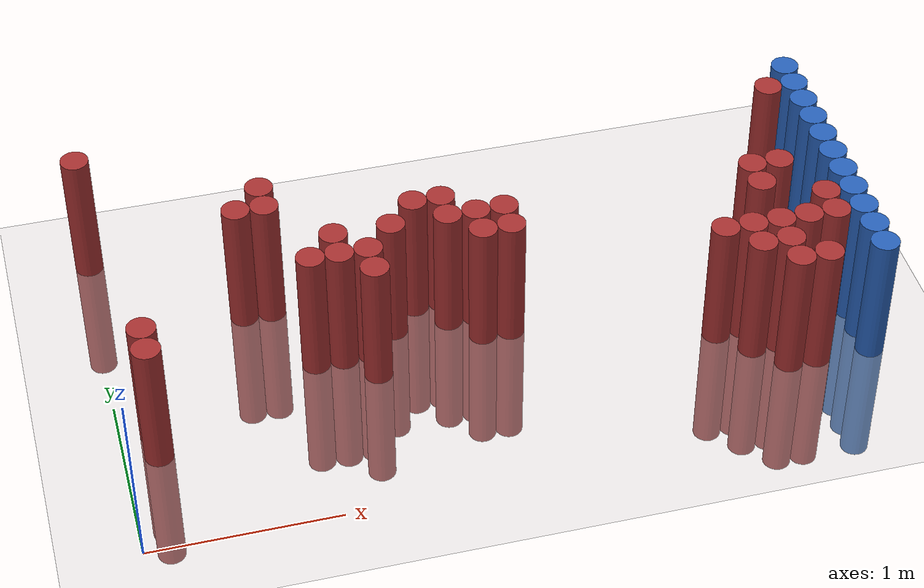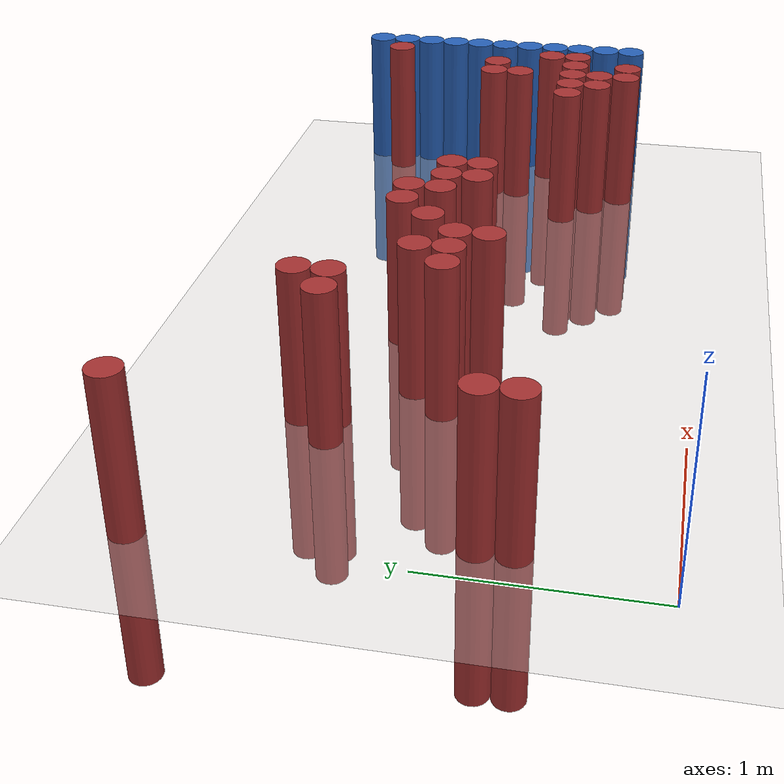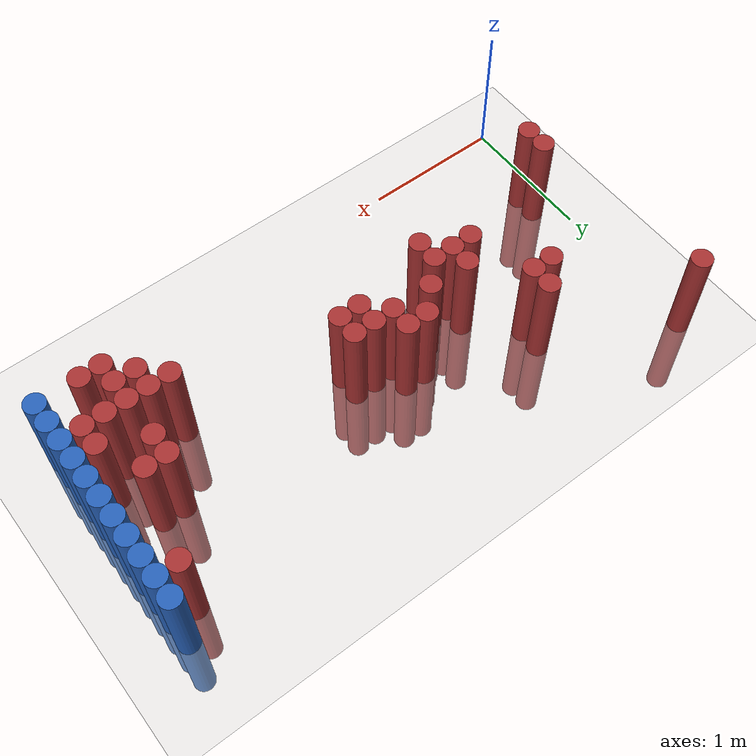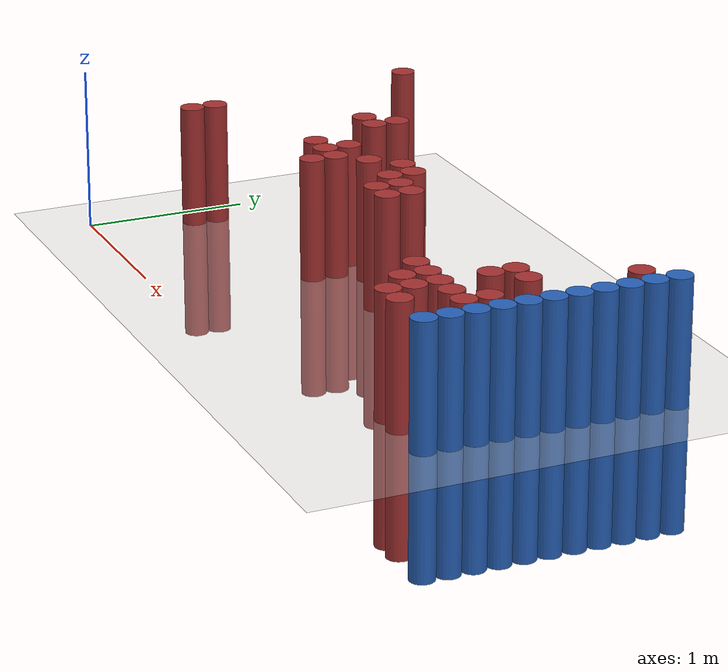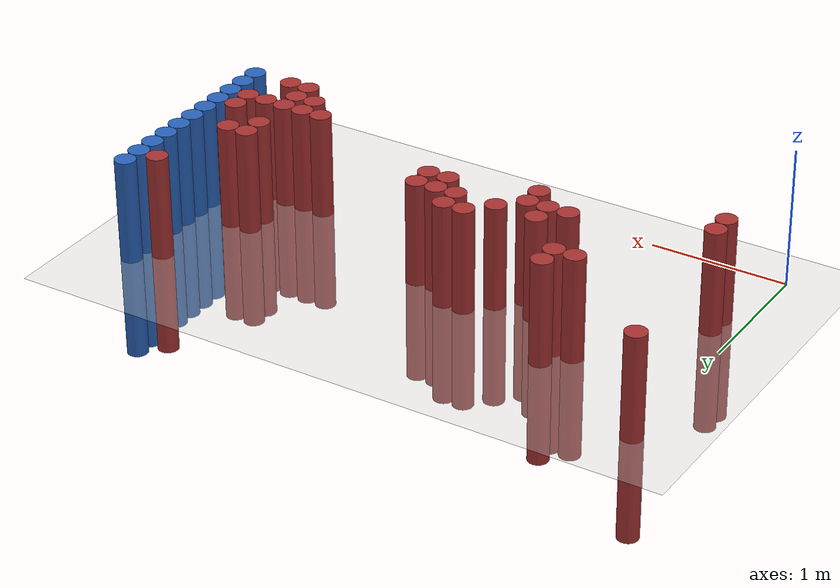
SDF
<sdf version="1.6">
 <world name="default">
  <model name="ground_plane">
   <static>1</static>
   <link name="link">
    <collision name="collision">
     <geometry><plane><normal>0 0 1</normal><size>100 100</size></plane></geometry>
     <surface><friction><ode><mu>100</mu><mu2>50</mu2></ode></friction></surface>
    </collision>
    <visual name="visual">
     <cast_shadows>0</cast_shadows>
     <geometry><plane><normal>0 0 1</normal><size>100 100</size></plane></geometry>
     <material>
      <script><uri>file://media/materials/scripts/gazebo.material</uri><name>Gazebo/Grey</name></script>
     </material>
    </visual>
   </link>
  </model>
  <model name="unit_cylinder_122">
   <static>1</static>
   <pose>3.925000 0.625000 0.000000 0.000000 0.000000 0.000000</pose>
   <link name="link">
    <inertial>
     <mass>1</mass>
     <inertia><ixx>0.145833</ixx><ixy>0</ixy><ixz>0</ixz><iyy>0.145833</iyy><iyz>0</iyz><izz>0.125</izz></inertia>
    </inertial>
    <collision name="collision">
     <geometry><cylinder><radius>0.075000</radius><length>1.5</length></cylinder></geometry>
    </collision>
    <visual name="visual">
     <geometry><cylinder><radius>0.075000</radius><length>1.5</length></cylinder></geometry>
     <material>
      <ambient>0.152000 0.379000 0.720000 1</ambient>
      <diffuse>0.152000 0.379000 0.720000 1</diffuse>
     </material>
     <material>
      <script><name>Gazebo/Grey</name><uri>file://media/materials/scripts/gazebo.material</uri></script>
     </material>
    </visual>
   </link>
  </model>
  <model name="unit_cylinder_124">
   <static>1</static>
   <pose>3.925000 0.775000 0.000000 0.000000 0.000000 0.000000</pose>
   <link name="link">
    <inertial>
     <mass>1</mass>
     <inertia><ixx>0.145833</ixx><ixy>0</ixy><ixz>0</ixz><iyy>0.145833</iyy><iyz>0</iyz><izz>0.125</izz></inertia>
    </inertial>
    <collision name="collision">
     <geometry><cylinder><radius>0.075000</radius><length>1.5</length></cylinder></geometry>
    </collision>
    <visual name="visual">
     <geometry><cylinder><radius>0.075000</radius><length>1.5</length></cylinder></geometry>
     <material>
      <ambient>0.152000 0.379000 0.720000 1</ambient>
      <diffuse>0.152000 0.379000 0.720000 1</diffuse>
     </material>
     <material>
      <script><name>Gazebo/Grey</name><uri>file://media/materials/scripts/gazebo.material</uri></script>
     </material>
    </visual>
   </link>
  </model>
  <model name="unit_cylinder_126">
   <static>1</static>
   <pose>3.925000 0.925000 0.000000 0.000000 0.000000 0.000000</pose>
   <link name="link">
    <inertial>
     <mass>1</mass>
     <inertia><ixx>0.145833</ixx><ixy>0</ixy><ixz>0</ixz><iyy>0.145833</iyy><iyz>0</iyz><izz>0.125</izz></inertia>
    </inertial>
    <collision name="collision">
     <geometry><cylinder><radius>0.075000</radius><length>1.5</length></cylinder></geometry>
    </collision>
    <visual name="visual">
     <geometry><cylinder><radius>0.075000</radius><length>1.5</length></cylinder></geometry>
     <material>
      <ambient>0.152000 0.379000 0.720000 1</ambient>
      <diffuse>0.152000 0.379000 0.720000 1</diffuse>
     </material>
     <material>
      <script><name>Gazebo/Grey</name><uri>file://media/materials/scripts/gazebo.material</uri></script>
     </material>
    </visual>
   </link>
  </model>
  <model name="unit_cylinder_128">
   <static>1</static>
   <pose>3.925000 1.075000 0.000000 0.000000 0.000000 0.000000</pose>
   <link name="link">
    <inertial>
     <mass>1</mass>
     <inertia><ixx>0.145833</ixx><ixy>0</ixy><ixz>0</ixz><iyy>0.145833</iyy><iyz>0</iyz><izz>0.125</izz></inertia>
    </inertial>
    <collision name="collision">
     <geometry><cylinder><radius>0.075000</radius><length>1.5</length></cylinder></geometry>
    </collision>
    <visual name="visual">
     <geometry><cylinder><radius>0.075000</radius><length>1.5</length></cylinder></geometry>
     <material>
      <ambient>0.152000 0.379000 0.720000 1</ambient>
      <diffuse>0.152000 0.379000 0.720000 1</diffuse>
     </material>
     <material>
      <script><name>Gazebo/Grey</name><uri>file://media/materials/scripts/gazebo.material</uri></script>
     </material>
    </visual>
   </link>
  </model>
  <model name="unit_cylinder_130">
   <static>1</static>
   <pose>3.925000 1.225000 0.000000 0.000000 0.000000 0.000000</pose>
   <link name="link">
    <inertial>
     <mass>1</mass>
     <inertia><ixx>0.145833</ixx><ixy>0</ixy><ixz>0</ixz><iyy>0.145833</iyy><iyz>0</iyz><izz>0.125</izz></inertia>
    </inertial>
    <collision name="collision">
     <geometry><cylinder><radius>0.075000</radius><length>1.5</length></cylinder></geometry>
    </collision>
    <visual name="visual">
     <geometry><cylinder><radius>0.075000</radius><length>1.5</length></cylinder></geometry>
     <material>
      <ambient>0.152000 0.379000 0.720000 1</ambient>
      <diffuse>0.152000 0.379000 0.720000 1</diffuse>
     </material>
     <material>
      <script><name>Gazebo/Grey</name><uri>file://media/materials/scripts/gazebo.material</uri></script>
     </material>
    </visual>
   </link>
  </model>
  <model name="unit_cylinder_132">
   <static>1</static>
   <pose>3.925000 1.375000 0.000000 0.000000 0.000000 0.000000</pose>
   <link name="link">
    <inertial>
     <mass>1</mass>
     <inertia><ixx>0.145833</ixx><ixy>0</ixy><ixz>0</ixz><iyy>0.145833</iyy><iyz>0</iyz><izz>0.125</izz></inertia>
    </inertial>
    <collision name="collision">
     <geometry><cylinder><radius>0.075000</radius><length>1.5</length></cylinder></geometry>
    </collision>
    <visual name="visual">
     <geometry><cylinder><radius>0.075000</radius><length>1.5</length></cylinder></geometry>
     <material>
      <ambient>0.152000 0.379000 0.720000 1</ambient>
      <diffuse>0.152000 0.379000 0.720000 1</diffuse>
     </material>
     <material>
      <script><name>Gazebo/Grey</name><uri>file://media/materials/scripts/gazebo.material</uri></script>
     </material>
    </visual>
   </link>
  </model>
  <model name="unit_cylinder_134">
   <static>1</static>
   <pose>3.925000 1.525000 0.000000 0.000000 0.000000 0.000000</pose>
   <link name="link">
    <inertial>
     <mass>1</mass>
     <inertia><ixx>0.145833</ixx><ixy>0</ixy><ixz>0</ixz><iyy>0.145833</iyy><iyz>0</iyz><izz>0.125</izz></inertia>
    </inertial>
    <collision name="collision">
     <geometry><cylinder><radius>0.075000</radius><length>1.5</length></cylinder></geometry>
    </collision>
    <visual name="visual">
     <geometry><cylinder><radius>0.075000</radius><length>1.5</length></cylinder></geometry>
     <material>
      <ambient>0.152000 0.379000 0.720000 1</ambient>
      <diffuse>0.152000 0.379000 0.720000 1</diffuse>
     </material>
     <material>
      <script><name>Gazebo/Grey</name><uri>file://media/materials/scripts/gazebo.material</uri></script>
     </material>
    </visual>
   </link>
  </model>
  <model name="unit_cylinder_136">
   <static>1</static>
   <pose>3.925000 1.675000 0.000000 0.000000 0.000000 0.000000</pose>
   <link name="link">
    <inertial>
     <mass>1</mass>
     <inertia><ixx>0.145833</ixx><ixy>0</ixy><ixz>0</ixz><iyy>0.145833</iyy><iyz>0</iyz><izz>0.125</izz></inertia>
    </inertial>
    <collision name="collision">
     <geometry><cylinder><radius>0.075000</radius><length>1.5</length></cylinder></geometry>
    </collision>
    <visual name="visual">
     <geometry><cylinder><radius>0.075000</radius><length>1.5</length></cylinder></geometry>
     <material>
      <ambient>0.152000 0.379000 0.720000 1</ambient>
      <diffuse>0.152000 0.379000 0.720000 1</diffuse>
     </material>
     <material>
      <script><name>Gazebo/Grey</name><uri>file://media/materials/scripts/gazebo.material</uri></script>
     </material>
    </visual>
   </link>
  </model>
  <model name="unit_cylinder_138">
   <static>1</static>
   <pose>3.925000 1.825000 0.000000 0.000000 0.000000 0.000000</pose>
   <link name="link">
    <inertial>
     <mass>1</mass>
     <inertia><ixx>0.145833</ixx><ixy>0</ixy><ixz>0</ixz><iyy>0.145833</iyy><iyz>0</iyz><izz>0.125</izz></inertia>
    </inertial>
    <collision name="collision">
     <geometry><cylinder><radius>0.075000</radius><length>1.5</length></cylinder></geometry>
    </collision>
    <visual name="visual">
     <geometry><cylinder><radius>0.075000</radius><length>1.5</length></cylinder></geometry>
     <material>
      <ambient>0.152000 0.379000 0.720000 1</ambient>
      <diffuse>0.152000 0.379000 0.720000 1</diffuse>
     </material>
     <material>
      <script><name>Gazebo/Grey</name><uri>file://media/materials/scripts/gazebo.material</uri></script>
     </material>
    </visual>
   </link>
  </model>
  <model name="unit_cylinder_140">
   <static>1</static>
   <pose>3.925000 1.975000 0.000000 0.000000 0.000000 0.000000</pose>
   <link name="link">
    <inertial>
     <mass>1</mass>
     <inertia><ixx>0.145833</ixx><ixy>0</ixy><ixz>0</ixz><iyy>0.145833</iyy><iyz>0</iyz><izz>0.125</izz></inertia>
    </inertial>
    <collision name="collision">
     <geometry><cylinder><radius>0.075000</radius><length>1.5</length></cylinder></geometry>
    </collision>
    <visual name="visual">
     <geometry><cylinder><radius>0.075000</radius><length>1.5</length></cylinder></geometry>
     <material>
      <ambient>0.152000 0.379000 0.720000 1</ambient>
      <diffuse>0.152000 0.379000 0.720000 1</diffuse>
     </material>
     <material>
      <script><name>Gazebo/Grey</name><uri>file://media/materials/scripts/gazebo.material</uri></script>
     </material>
    </visual>
   </link>
  </model>
  <model name="unit_cylinder_326">
   <static>1</static>
   <pose>0.025000 2.125000 0.000000 0.000000 0.000000 0.000000</pose>
   <link name="link">
    <inertial>
     <mass>1</mass>
     <inertia><ixx>0.145833</ixx><ixy>0</ixy><ixz>0</ixz><iyy>0.145833</iyy><iyz>0</iyz><izz>0.125</izz></inertia>
    </inertial>
    <collision name="collision">
     <geometry><cylinder><radius>0.075000</radius><length>1.5</length></cylinder></geometry>
    </collision>
    <visual name="visual">
     <geometry><cylinder><radius>0.075000</radius><length>1.5</length></cylinder></geometry>
     <material>
      <ambient>0.648000 0.192000 0.192000 1</ambient>
      <diffuse>0.648000 0.192000 0.192000 1</diffuse>
     </material>
     <material>
      <script><name>Gazebo/Grey</name><uri>file://media/materials/scripts/gazebo.material</uri></script>
     </material>
    </visual>
   </link>
  </model>
  <model name="unit_cylinder_330">
   <static>1</static>
   <pose>0.175000 0.625000 0.000000 0.000000 0.000000 0.000000</pose>
   <link name="link">
    <inertial>
     <mass>1</mass>
     <inertia><ixx>0.145833</ixx><ixy>0</ixy><ixz>0</ixz><iyy>0.145833</iyy><iyz>0</iyz><izz>0.125</izz></inertia>
    </inertial>
    <collision name="collision">
     <geometry><cylinder><radius>0.075000</radius><length>1.5</length></cylinder></geometry>
    </collision>
    <visual name="visual">
     <geometry><cylinder><radius>0.075000</radius><length>1.5</length></cylinder></geometry>
     <material>
      <ambient>0.648000 0.192000 0.192000 1</ambient>
      <diffuse>0.648000 0.192000 0.192000 1</diffuse>
     </material>
     <material>
      <script><name>Gazebo/Grey</name><uri>file://media/materials/scripts/gazebo.material</uri></script>
     </material>
    </visual>
   </link>
  </model>
  <model name="unit_cylinder_331">
   <static>1</static>
   <pose>0.175000 0.775000 0.000000 0.000000 0.000000 0.000000</pose>
   <link name="link">
    <inertial>
     <mass>1</mass>
     <inertia><ixx>0.145833</ixx><ixy>0</ixy><ixz>0</ixz><iyy>0.145833</iyy><iyz>0</iyz><izz>0.125</izz></inertia>
    </inertial>
    <collision name="collision">
     <geometry><cylinder><radius>0.075000</radius><length>1.5</length></cylinder></geometry>
    </collision>
    <visual name="visual">
     <geometry><cylinder><radius>0.075000</radius><length>1.5</length></cylinder></geometry>
     <material>
      <ambient>0.648000 0.192000 0.192000 1</ambient>
      <diffuse>0.648000 0.192000 0.192000 1</diffuse>
     </material>
     <material>
      <script><name>Gazebo/Grey</name><uri>file://media/materials/scripts/gazebo.material</uri></script>
     </material>
    </visual>
   </link>
  </model>
  <model name="unit_cylinder_342">
   <static>1</static>
   <pose>0.775000 1.525000 0.000000 0.000000 0.000000 0.000000</pose>
   <link name="link">
    <inertial>
     <mass>1</mass>
     <inertia><ixx>0.145833</ixx><ixy>0</ixy><ixz>0</ixz><iyy>0.145833</iyy><iyz>0</iyz><izz>0.125</izz></inertia>
    </inertial>
    <collision name="collision">
     <geometry><cylinder><radius>0.075000</radius><length>1.5</length></cylinder></geometry>
    </collision>
    <visual name="visual">
     <geometry><cylinder><radius>0.075000</radius><length>1.5</length></cylinder></geometry>
     <material>
      <ambient>0.648000 0.192000 0.192000 1</ambient>
      <diffuse>0.648000 0.192000 0.192000 1</diffuse>
     </material>
     <material>
      <script><name>Gazebo/Grey</name><uri>file://media/materials/scripts/gazebo.material</uri></script>
     </material>
    </visual>
   </link>
  </model>
  <model name="unit_cylinder_345">
   <static>1</static>
   <pose>0.925000 1.525000 0.000000 0.000000 0.000000 0.000000</pose>
   <link name="link">
    <inertial>
     <mass>1</mass>
     <inertia><ixx>0.145833</ixx><ixy>0</ixy><ixz>0</ixz><iyy>0.145833</iyy><iyz>0</iyz><izz>0.125</izz></inertia>
    </inertial>
    <collision name="collision">
     <geometry><cylinder><radius>0.075000</radius><length>1.5</length></cylinder></geometry>
    </collision>
    <visual name="visual">
     <geometry><cylinder><radius>0.075000</radius><length>1.5</length></cylinder></geometry>
     <material>
      <ambient>0.648000 0.192000 0.192000 1</ambient>
      <diffuse>0.648000 0.192000 0.192000 1</diffuse>
     </material>
     <material>
      <script><name>Gazebo/Grey</name><uri>file://media/materials/scripts/gazebo.material</uri></script>
     </material>
    </visual>
   </link>
  </model>
  <model name="unit_cylinder_346">
   <static>1</static>
   <pose>0.925000 1.675000 0.000000 0.000000 0.000000 0.000000</pose>
   <link name="link">
    <inertial>
     <mass>1</mass>
     <inertia><ixx>0.145833</ixx><ixy>0</ixy><ixz>0</ixz><iyy>0.145833</iyy><iyz>0</iyz><izz>0.125</izz></inertia>
    </inertial>
    <collision name="collision">
     <geometry><cylinder><radius>0.075000</radius><length>1.5</length></cylinder></geometry>
    </collision>
    <visual name="visual">
     <geometry><cylinder><radius>0.075000</radius><length>1.5</length></cylinder></geometry>
     <material>
      <ambient>0.648000 0.192000 0.192000 1</ambient>
      <diffuse>0.648000 0.192000 0.192000 1</diffuse>
     </material>
     <material>
      <script><name>Gazebo/Grey</name><uri>file://media/materials/scripts/gazebo.material</uri></script>
     </material>
    </visual>
   </link>
  </model>
  <model name="unit_cylinder_350">
   <static>1</static>
   <pose>1.075000 1.075000 0.000000 0.000000 0.000000 0.000000</pose>
   <link name="link">
    <inertial>
     <mass>1</mass>
     <inertia><ixx>0.145833</ixx><ixy>0</ixy><ixz>0</ixz><iyy>0.145833</iyy><iyz>0</iyz><izz>0.125</izz></inertia>
    </inertial>
    <collision name="collision">
     <geometry><cylinder><radius>0.075000</radius><length>1.5</length></cylinder></geometry>
    </collision>
    <visual name="visual">
     <geometry><cylinder><radius>0.075000</radius><length>1.5</length></cylinder></geometry>
     <material>
      <ambient>0.648000 0.192000 0.192000 1</ambient>
      <diffuse>0.648000 0.192000 0.192000 1</diffuse>
     </material>
     <material>
      <script><name>Gazebo/Grey</name><uri>file://media/materials/scripts/gazebo.material</uri></script>
     </material>
    </visual>
   </link>
  </model>
  <model name="unit_cylinder_356">
   <static>1</static>
   <pose>1.225000 1.075000 0.000000 0.000000 0.000000 0.000000</pose>
   <link name="link">
    <inertial>
     <mass>1</mass>
     <inertia><ixx>0.145833</ixx><ixy>0</ixy><ixz>0</ixz><iyy>0.145833</iyy><iyz>0</iyz><izz>0.125</izz></inertia>
    </inertial>
    <collision name="collision">
     <geometry><cylinder><radius>0.075000</radius><length>1.5</length></cylinder></geometry>
    </collision>
    <visual name="visual">
     <geometry><cylinder><radius>0.075000</radius><length>1.5</length></cylinder></geometry>
     <material>
      <ambient>0.648000 0.192000 0.192000 1</ambient>
      <diffuse>0.648000 0.192000 0.192000 1</diffuse>
     </material>
     <material>
      <script><name>Gazebo/Grey</name><uri>file://media/materials/scripts/gazebo.material</uri></script>
     </material>
    </visual>
   </link>
  </model>
  <model name="unit_cylinder_357">
   <static>1</static>
   <pose>1.225000 1.225000 0.000000 0.000000 0.000000 0.000000</pose>
   <link name="link">
    <inertial>
     <mass>1</mass>
     <inertia><ixx>0.145833</ixx><ixy>0</ixy><ixz>0</ixz><iyy>0.145833</iyy><iyz>0</iyz><izz>0.125</izz></inertia>
    </inertial>
    <collision name="collision">
     <geometry><cylinder><radius>0.075000</radius><length>1.5</length></cylinder></geometry>
    </collision>
    <visual name="visual">
     <geometry><cylinder><radius>0.075000</radius><length>1.5</length></cylinder></geometry>
     <material>
      <ambient>0.648000 0.192000 0.192000 1</ambient>
      <diffuse>0.648000 0.192000 0.192000 1</diffuse>
     </material>
     <material>
      <script><name>Gazebo/Grey</name><uri>file://media/materials/scripts/gazebo.material</uri></script>
     </material>
    </visual>
   </link>
  </model>
  <model name="unit_cylinder_361">
   <static>1</static>
   <pose>1.375000 0.925000 0.000000 0.000000 0.000000 0.000000</pose>
   <link name="link">
    <inertial>
     <mass>1</mass>
     <inertia><ixx>0.145833</ixx><ixy>0</ixy><ixz>0</ixz><iyy>0.145833</iyy><iyz>0</iyz><izz>0.125</izz></inertia>
    </inertial>
    <collision name="collision">
     <geometry><cylinder><radius>0.075000</radius><length>1.5</length></cylinder></geometry>
    </collision>
    <visual name="visual">
     <geometry><cylinder><radius>0.075000</radius><length>1.5</length></cylinder></geometry>
     <material>
      <ambient>0.648000 0.192000 0.192000 1</ambient>
      <diffuse>0.648000 0.192000 0.192000 1</diffuse>
     </material>
     <material>
      <script><name>Gazebo/Grey</name><uri>file://media/materials/scripts/gazebo.material</uri></script>
     </material>
    </visual>
   </link>
  </model>
  <model name="unit_cylinder_362">
   <static>1</static>
   <pose>1.375000 1.075000 0.000000 0.000000 0.000000 0.000000</pose>
   <link name="link">
    <inertial>
     <mass>1</mass>
     <inertia><ixx>0.145833</ixx><ixy>0</ixy><ixz>0</ixz><iyy>0.145833</iyy><iyz>0</iyz><izz>0.125</izz></inertia>
    </inertial>
    <collision name="collision">
     <geometry><cylinder><radius>0.075000</radius><length>1.5</length></cylinder></geometry>
    </collision>
    <visual name="visual">
     <geometry><cylinder><radius>0.075000</radius><length>1.5</length></cylinder></geometry>
     <material>
      <ambient>0.648000 0.192000 0.192000 1</ambient>
      <diffuse>0.648000 0.192000 0.192000 1</diffuse>
     </material>
     <material>
      <script><name>Gazebo/Grey</name><uri>file://media/materials/scripts/gazebo.material</uri></script>
     </material>
    </visual>
   </link>
  </model>
  <model name="unit_cylinder_364">
   <static>1</static>
   <pose>1.525000 1.225000 0.000000 0.000000 0.000000 0.000000</pose>
   <link name="link">
    <inertial>
     <mass>1</mass>
     <inertia><ixx>0.145833</ixx><ixy>0</ixy><ixz>0</ixz><iyy>0.145833</iyy><iyz>0</iyz><izz>0.125</izz></inertia>
    </inertial>
    <collision name="collision">
     <geometry><cylinder><radius>0.075000</radius><length>1.5</length></cylinder></geometry>
    </collision>
    <visual name="visual">
     <geometry><cylinder><radius>0.075000</radius><length>1.5</length></cylinder></geometry>
     <material>
      <ambient>0.648000 0.192000 0.192000 1</ambient>
      <diffuse>0.648000 0.192000 0.192000 1</diffuse>
     </material>
     <material>
      <script><name>Gazebo/Grey</name><uri>file://media/materials/scripts/gazebo.material</uri></script>
     </material>
    </visual>
   </link>
  </model>
  <model name="unit_cylinder_369">
   <static>1</static>
   <pose>1.675000 1.375000 0.000000 0.000000 0.000000 0.000000</pose>
   <link name="link">
    <inertial>
     <mass>1</mass>
     <inertia><ixx>0.145833</ixx><ixy>0</ixy><ixz>0</ixz><iyy>0.145833</iyy><iyz>0</iyz><izz>0.125</izz></inertia>
    </inertial>
    <collision name="collision">
     <geometry><cylinder><radius>0.075000</radius><length>1.5</length></cylinder></geometry>
    </collision>
    <visual name="visual">
     <geometry><cylinder><radius>0.075000</radius><length>1.5</length></cylinder></geometry>
     <material>
      <ambient>0.648000 0.192000 0.192000 1</ambient>
      <diffuse>0.648000 0.192000 0.192000 1</diffuse>
     </material>
     <material>
      <script><name>Gazebo/Grey</name><uri>file://media/materials/scripts/gazebo.material</uri></script>
     </material>
    </visual>
   </link>
  </model>
  <model name="unit_cylinder_372">
   <static>1</static>
   <pose>1.825000 1.225000 0.000000 0.000000 0.000000 0.000000</pose>
   <link name="link">
    <inertial>
     <mass>1</mass>
     <inertia><ixx>0.145833</ixx><ixy>0</ixy><ixz>0</ixz><iyy>0.145833</iyy><iyz>0</iyz><izz>0.125</izz></inertia>
    </inertial>
    <collision name="collision">
     <geometry><cylinder><radius>0.075000</radius><length>1.5</length></cylinder></geometry>
    </collision>
    <visual name="visual">
     <geometry><cylinder><radius>0.075000</radius><length>1.5</length></cylinder></geometry>
     <material>
      <ambient>0.648000 0.192000 0.192000 1</ambient>
      <diffuse>0.648000 0.192000 0.192000 1</diffuse>
     </material>
     <material>
      <script><name>Gazebo/Grey</name><uri>file://media/materials/scripts/gazebo.material</uri></script>
     </material>
    </visual>
   </link>
  </model>
  <model name="unit_cylinder_373">
   <static>1</static>
   <pose>1.825000 1.375000 0.000000 0.000000 0.000000 0.000000</pose>
   <link name="link">
    <inertial>
     <mass>1</mass>
     <inertia><ixx>0.145833</ixx><ixy>0</ixy><ixz>0</ixz><iyy>0.145833</iyy><iyz>0</iyz><izz>0.125</izz></inertia>
    </inertial>
    <collision name="collision">
     <geometry><cylinder><radius>0.075000</radius><length>1.5</length></cylinder></geometry>
    </collision>
    <visual name="visual">
     <geometry><cylinder><radius>0.075000</radius><length>1.5</length></cylinder></geometry>
     <material>
      <ambient>0.648000 0.192000 0.192000 1</ambient>
      <diffuse>0.648000 0.192000 0.192000 1</diffuse>
     </material>
     <material>
      <script><name>Gazebo/Grey</name><uri>file://media/materials/scripts/gazebo.material</uri></script>
     </material>
    </visual>
   </link>
  </model>
  <model name="unit_cylinder_376">
   <static>1</static>
   <pose>1.975000 1.075000 0.000000 0.000000 0.000000 0.000000</pose>
   <link name="link">
    <inertial>
     <mass>1</mass>
     <inertia><ixx>0.145833</ixx><ixy>0</ixy><ixz>0</ixz><iyy>0.145833</iyy><iyz>0</iyz><izz>0.125</izz></inertia>
    </inertial>
    <collision name="collision">
     <geometry><cylinder><radius>0.075000</radius><length>1.5</length></cylinder></geometry>
    </collision>
    <visual name="visual">
     <geometry><cylinder><radius>0.075000</radius><length>1.5</length></cylinder></geometry>
     <material>
      <ambient>0.648000 0.192000 0.192000 1</ambient>
      <diffuse>0.648000 0.192000 0.192000 1</diffuse>
     </material>
     <material>
      <script><name>Gazebo/Grey</name><uri>file://media/materials/scripts/gazebo.material</uri></script>
     </material>
    </visual>
   </link>
  </model>
  <model name="unit_cylinder_377">
   <static>1</static>
   <pose>1.975000 1.225000 0.000000 0.000000 0.000000 0.000000</pose>
   <link name="link">
    <inertial>
     <mass>1</mass>
     <inertia><ixx>0.145833</ixx><ixy>0</ixy><ixz>0</ixz><iyy>0.145833</iyy><iyz>0</iyz><izz>0.125</izz></inertia>
    </inertial>
    <collision name="collision">
     <geometry><cylinder><radius>0.075000</radius><length>1.5</length></cylinder></geometry>
    </collision>
    <visual name="visual">
     <geometry><cylinder><radius>0.075000</radius><length>1.5</length></cylinder></geometry>
     <material>
      <ambient>0.648000 0.192000 0.192000 1</ambient>
      <diffuse>0.648000 0.192000 0.192000 1</diffuse>
     </material>
     <material>
      <script><name>Gazebo/Grey</name><uri>file://media/materials/scripts/gazebo.material</uri></script>
     </material>
    </visual>
   </link>
  </model>
  <model name="unit_cylinder_378">
   <static>1</static>
   <pose>2.125000 1.075000 0.000000 0.000000 0.000000 0.000000</pose>
   <link name="link">
    <inertial>
     <mass>1</mass>
     <inertia><ixx>0.145833</ixx><ixy>0</ixy><ixz>0</ixz><iyy>0.145833</iyy><iyz>0</iyz><izz>0.125</izz></inertia>
    </inertial>
    <collision name="collision">
     <geometry><cylinder><radius>0.075000</radius><length>1.5</length></cylinder></geometry>
    </collision>
    <visual name="visual">
     <geometry><cylinder><radius>0.075000</radius><length>1.5</length></cylinder></geometry>
     <material>
      <ambient>0.648000 0.192000 0.192000 1</ambient>
      <diffuse>0.648000 0.192000 0.192000 1</diffuse>
     </material>
     <material>
      <script><name>Gazebo/Grey</name><uri>file://media/materials/scripts/gazebo.material</uri></script>
     </material>
    </visual>
   </link>
  </model>
  <model name="unit_cylinder_379">
   <static>1</static>
   <pose>2.125000 1.225000 0.000000 0.000000 0.000000 0.000000</pose>
   <link name="link">
    <inertial>
     <mass>1</mass>
     <inertia><ixx>0.145833</ixx><ixy>0</ixy><ixz>0</ixz><iyy>0.145833</iyy><iyz>0</iyz><izz>0.125</izz></inertia>
    </inertial>
    <collision name="collision">
     <geometry><cylinder><radius>0.075000</radius><length>1.5</length></cylinder></geometry>
    </collision>
    <visual name="visual">
     <geometry><cylinder><radius>0.075000</radius><length>1.5</length></cylinder></geometry>
     <material>
      <ambient>0.648000 0.192000 0.192000 1</ambient>
      <diffuse>0.648000 0.192000 0.192000 1</diffuse>
     </material>
     <material>
      <script><name>Gazebo/Grey</name><uri>file://media/materials/scripts/gazebo.material</uri></script>
     </material>
    </visual>
   </link>
  </model>
  <model name="unit_cylinder_392">
   <static>1</static>
   <pose>3.175000 0.775000 0.000000 0.000000 0.000000 0.000000</pose>
   <link name="link">
    <inertial>
     <mass>1</mass>
     <inertia><ixx>0.145833</ixx><ixy>0</ixy><ixz>0</ixz><iyy>0.145833</iyy><iyz>0</iyz><izz>0.125</izz></inertia>
    </inertial>
    <collision name="collision">
     <geometry><cylinder><radius>0.075000</radius><length>1.5</length></cylinder></geometry>
    </collision>
    <visual name="visual">
     <geometry><cylinder><radius>0.075000</radius><length>1.5</length></cylinder></geometry>
     <material>
      <ambient>0.648000 0.192000 0.192000 1</ambient>
      <diffuse>0.648000 0.192000 0.192000 1</diffuse>
     </material>
     <material>
      <script><name>Gazebo/Grey</name><uri>file://media/materials/scripts/gazebo.material</uri></script>
     </material>
    </visual>
   </link>
  </model>
  <model name="unit_cylinder_396">
   <static>1</static>
   <pose>3.325000 0.625000 0.000000 0.000000 0.000000 0.000000</pose>
   <link name="link">
    <inertial>
     <mass>1</mass>
     <inertia><ixx>0.145833</ixx><ixy>0</ixy><ixz>0</ixz><iyy>0.145833</iyy><iyz>0</iyz><izz>0.125</izz></inertia>
    </inertial>
    <collision name="collision">
     <geometry><cylinder><radius>0.075000</radius><length>1.5</length></cylinder></geometry>
    </collision>
    <visual name="visual">
     <geometry><cylinder><radius>0.075000</radius><length>1.5</length></cylinder></geometry>
     <material>
      <ambient>0.648000 0.192000 0.192000 1</ambient>
      <diffuse>0.648000 0.192000 0.192000 1</diffuse>
     </material>
     <material>
      <script><name>Gazebo/Grey</name><uri>file://media/materials/scripts/gazebo.material</uri></script>
     </material>
    </visual>
   </link>
  </model>
  <model name="unit_cylinder_397">
   <static>1</static>
   <pose>3.325000 0.775000 0.000000 0.000000 0.000000 0.000000</pose>
   <link name="link">
    <inertial>
     <mass>1</mass>
     <inertia><ixx>0.145833</ixx><ixy>0</ixy><ixz>0</ixz><iyy>0.145833</iyy><iyz>0</iyz><izz>0.125</izz></inertia>
    </inertial>
    <collision name="collision">
     <geometry><cylinder><radius>0.075000</radius><length>1.5</length></cylinder></geometry>
    </collision>
    <visual name="visual">
     <geometry><cylinder><radius>0.075000</radius><length>1.5</length></cylinder></geometry>
     <material>
      <ambient>0.648000 0.192000 0.192000 1</ambient>
      <diffuse>0.648000 0.192000 0.192000 1</diffuse>
     </material>
     <material>
      <script><name>Gazebo/Grey</name><uri>file://media/materials/scripts/gazebo.material</uri></script>
     </material>
    </visual>
   </link>
  </model>
  <model name="unit_cylinder_402">
   <static>1</static>
   <pose>3.475000 0.475000 0.000000 0.000000 0.000000 0.000000</pose>
   <link name="link">
    <inertial>
     <mass>1</mass>
     <inertia><ixx>0.145833</ixx><ixy>0</ixy><ixz>0</ixz><iyy>0.145833</iyy><iyz>0</iyz><izz>0.125</izz></inertia>
    </inertial>
    <collision name="collision">
     <geometry><cylinder><radius>0.075000</radius><length>1.5</length></cylinder></geometry>
    </collision>
    <visual name="visual">
     <geometry><cylinder><radius>0.075000</radius><length>1.5</length></cylinder></geometry>
     <material>
      <ambient>0.648000 0.192000 0.192000 1</ambient>
      <diffuse>0.648000 0.192000 0.192000 1</diffuse>
     </material>
     <material>
      <script><name>Gazebo/Grey</name><uri>file://media/materials/scripts/gazebo.material</uri></script>
     </material>
    </visual>
   </link>
  </model>
  <model name="unit_cylinder_403">
   <static>1</static>
   <pose>3.475000 0.625000 0.000000 0.000000 0.000000 0.000000</pose>
   <link name="link">
    <inertial>
     <mass>1</mass>
     <inertia><ixx>0.145833</ixx><ixy>0</ixy><ixz>0</ixz><iyy>0.145833</iyy><iyz>0</iyz><izz>0.125</izz></inertia>
    </inertial>
    <collision name="collision">
     <geometry><cylinder><radius>0.075000</radius><length>1.5</length></cylinder></geometry>
    </collision>
    <visual name="visual">
     <geometry><cylinder><radius>0.075000</radius><length>1.5</length></cylinder></geometry>
     <material>
      <ambient>0.648000 0.192000 0.192000 1</ambient>
      <diffuse>0.648000 0.192000 0.192000 1</diffuse>
     </material>
     <material>
      <script><name>Gazebo/Grey</name><uri>file://media/materials/scripts/gazebo.material</uri></script>
     </material>
    </visual>
   </link>
  </model>
  <model name="unit_cylinder_404">
   <static>1</static>
   <pose>3.475000 0.775000 0.000000 0.000000 0.000000 0.000000</pose>
   <link name="link">
    <inertial>
     <mass>1</mass>
     <inertia><ixx>0.145833</ixx><ixy>0</ixy><ixz>0</ixz><iyy>0.145833</iyy><iyz>0</iyz><izz>0.125</izz></inertia>
    </inertial>
    <collision name="collision">
     <geometry><cylinder><radius>0.075000</radius><length>1.5</length></cylinder></geometry>
    </collision>
    <visual name="visual">
     <geometry><cylinder><radius>0.075000</radius><length>1.5</length></cylinder></geometry>
     <material>
      <ambient>0.648000 0.192000 0.192000 1</ambient>
      <diffuse>0.648000 0.192000 0.192000 1</diffuse>
     </material>
     <material>
      <script><name>Gazebo/Grey</name><uri>file://media/materials/scripts/gazebo.material</uri></script>
     </material>
    </visual>
   </link>
  </model>
  <model name="unit_cylinder_405">
   <static>1</static>
   <pose>3.475000 1.075000 0.000000 0.000000 0.000000 0.000000</pose>
   <link name="link">
    <inertial>
     <mass>1</mass>
     <inertia><ixx>0.145833</ixx><ixy>0</ixy><ixz>0</ixz><iyy>0.145833</iyy><iyz>0</iyz><izz>0.125</izz></inertia>
    </inertial>
    <collision name="collision">
     <geometry><cylinder><radius>0.075000</radius><length>1.5</length></cylinder></geometry>
    </collision>
    <visual name="visual">
     <geometry><cylinder><radius>0.075000</radius><length>1.5</length></cylinder></geometry>
     <material>
      <ambient>0.648000 0.192000 0.192000 1</ambient>
      <diffuse>0.648000 0.192000 0.192000 1</diffuse>
     </material>
     <material>
      <script><name>Gazebo/Grey</name><uri>file://media/materials/scripts/gazebo.material</uri></script>
     </material>
    </visual>
   </link>
  </model>
  <model name="unit_cylinder_406">
   <static>1</static>
   <pose>3.475000 1.225000 0.000000 0.000000 0.000000 0.000000</pose>
   <link name="link">
    <inertial>
     <mass>1</mass>
     <inertia><ixx>0.145833</ixx><ixy>0</ixy><ixz>0</ixz><iyy>0.145833</iyy><iyz>0</iyz><izz>0.125</izz></inertia>
    </inertial>
    <collision name="collision">
     <geometry><cylinder><radius>0.075000</radius><length>1.5</length></cylinder></geometry>
    </collision>
    <visual name="visual">
     <geometry><cylinder><radius>0.075000</radius><length>1.5</length></cylinder></geometry>
     <material>
      <ambient>0.648000 0.192000 0.192000 1</ambient>
      <diffuse>0.648000 0.192000 0.192000 1</diffuse>
     </material>
     <material>
      <script><name>Gazebo/Grey</name><uri>file://media/materials/scripts/gazebo.material</uri></script>
     </material>
    </visual>
   </link>
  </model>
  <model name="unit_cylinder_411">
   <static>1</static>
   <pose>3.625000 0.475000 0.000000 0.000000 0.000000 0.000000</pose>
   <link name="link">
    <inertial>
     <mass>1</mass>
     <inertia><ixx>0.145833</ixx><ixy>0</ixy><ixz>0</ixz><iyy>0.145833</iyy><iyz>0</iyz><izz>0.125</izz></inertia>
    </inertial>
    <collision name="collision">
     <geometry><cylinder><radius>0.075000</radius><length>1.5</length></cylinder></geometry>
    </collision>
    <visual name="visual">
     <geometry><cylinder><radius>0.075000</radius><length>1.5</length></cylinder></geometry>
     <material>
      <ambient>0.648000 0.192000 0.192000 1</ambient>
      <diffuse>0.648000 0.192000 0.192000 1</diffuse>
     </material>
     <material>
      <script><name>Gazebo/Grey</name><uri>file://media/materials/scripts/gazebo.material</uri></script>
     </material>
    </visual>
   </link>
  </model>
  <model name="unit_cylinder_412">
   <static>1</static>
   <pose>3.625000 0.775000 0.000000 0.000000 0.000000 0.000000</pose>
   <link name="link">
    <inertial>
     <mass>1</mass>
     <inertia><ixx>0.145833</ixx><ixy>0</ixy><ixz>0</ixz><iyy>0.145833</iyy><iyz>0</iyz><izz>0.125</izz></inertia>
    </inertial>
    <collision name="collision">
     <geometry><cylinder><radius>0.075000</radius><length>1.5</length></cylinder></geometry>
    </collision>
    <visual name="visual">
     <geometry><cylinder><radius>0.075000</radius><length>1.5</length></cylinder></geometry>
     <material>
      <ambient>0.648000 0.192000 0.192000 1</ambient>
      <diffuse>0.648000 0.192000 0.192000 1</diffuse>
     </material>
     <material>
      <script><name>Gazebo/Grey</name><uri>file://media/materials/scripts/gazebo.material</uri></script>
     </material>
    </visual>
   </link>
  </model>
  <model name="unit_cylinder_413">
   <static>1</static>
   <pose>3.625000 1.225000 0.000000 0.000000 0.000000 0.000000</pose>
   <link name="link">
    <inertial>
     <mass>1</mass>
     <inertia><ixx>0.145833</ixx><ixy>0</ixy><ixz>0</ixz><iyy>0.145833</iyy><iyz>0</iyz><izz>0.125</izz></inertia>
    </inertial>
    <collision name="collision">
     <geometry><cylinder><radius>0.075000</radius><length>1.5</length></cylinder></geometry>
    </collision>
    <visual name="visual">
     <geometry><cylinder><radius>0.075000</radius><length>1.5</length></cylinder></geometry>
     <material>
      <ambient>0.648000 0.192000 0.192000 1</ambient>
      <diffuse>0.648000 0.192000 0.192000 1</diffuse>
     </material>
     <material>
      <script><name>Gazebo/Grey</name><uri>file://media/materials/scripts/gazebo.material</uri></script>
     </material>
    </visual>
   </link>
  </model>
  <model name="unit_cylinder_426">
   <static>1</static>
   <pose>3.775000 0.775000 0.000000 0.000000 0.000000 0.000000</pose>
   <link name="link">
    <inertial>
     <mass>1</mass>
     <inertia><ixx>0.145833</ixx><ixy>0</ixy><ixz>0</ixz><iyy>0.145833</iyy><iyz>0</iyz><izz>0.125</izz></inertia>
    </inertial>
    <collision name="collision">
     <geometry><cylinder><radius>0.075000</radius><length>1.5</length></cylinder></geometry>
    </collision>
    <visual name="visual">
     <geometry><cylinder><radius>0.075000</radius><length>1.5</length></cylinder></geometry>
     <material>
      <ambient>0.648000 0.192000 0.192000 1</ambient>
      <diffuse>0.648000 0.192000 0.192000 1</diffuse>
     </material>
     <material>
      <script><name>Gazebo/Grey</name><uri>file://media/materials/scripts/gazebo.material</uri></script>
     </material>
    </visual>
   </link>
  </model>
  <model name="unit_cylinder_427">
   <static>1</static>
   <pose>3.775000 0.925000 0.000000 0.000000 0.000000 0.000000</pose>
   <link name="link">
    <inertial>
     <mass>1</mass>
     <inertia><ixx>0.145833</ixx><ixy>0</ixy><ixz>0</ixz><iyy>0.145833</iyy><iyz>0</iyz><izz>0.125</izz></inertia>
    </inertial>
    <collision name="collision">
     <geometry><cylinder><radius>0.075000</radius><length>1.5</length></cylinder></geometry>
    </collision>
    <visual name="visual">
     <geometry><cylinder><radius>0.075000</radius><length>1.5</length></cylinder></geometry>
     <material>
      <ambient>0.648000 0.192000 0.192000 1</ambient>
      <diffuse>0.648000 0.192000 0.192000 1</diffuse>
     </material>
     <material>
      <script><name>Gazebo/Grey</name><uri>file://media/materials/scripts/gazebo.material</uri></script>
     </material>
    </visual>
   </link>
  </model>
  <model name="unit_cylinder_428">
   <static>1</static>
   <pose>3.775000 1.825000 0.000000 0.000000 0.000000 0.000000</pose>
   <link name="link">
    <inertial>
     <mass>1</mass>
     <inertia><ixx>0.145833</ixx><ixy>0</ixy><ixz>0</ixz><iyy>0.145833</iyy><iyz>0</iyz><izz>0.125</izz></inertia>
    </inertial>
    <collision name="collision">
     <geometry><cylinder><radius>0.075000</radius><length>1.5</length></cylinder></geometry>
    </collision>
    <visual name="visual">
     <geometry><cylinder><radius>0.075000</radius><length>1.5</length></cylinder></geometry>
     <material>
      <ambient>0.648000 0.192000 0.192000 1</ambient>
      <diffuse>0.648000 0.192000 0.192000 1</diffuse>
     </material>
     <material>
      <script><name>Gazebo/Grey</name><uri>file://media/materials/scripts/gazebo.material</uri></script>
     </material>
    </visual>
   </link>
  </model>
  <model name="unit_cylinder_453">
   <static>1</static>
   <pose>3.925000 0.475000 0.000000 0.000000 0.000000 0.000000</pose>
   <link name="link">
    <inertial>
     <mass>1</mass>
     <inertia><ixx>0.145833</ixx><ixy>0</ixy><ixz>0</ixz><iyy>0.145833</iyy><iyz>0</iyz><izz>0.125</izz></inertia>
    </inertial>
    <collision name="collision">
     <geometry><cylinder><radius>0.075000</radius><length>1.5</length></cylinder></geometry>
    </collision>
    <visual name="visual">
     <geometry><cylinder><radius>0.075000</radius><length>1.5</length></cylinder></geometry>
     <material>
      <ambient>0.152000 0.379000 0.720000 1</ambient>
      <diffuse>0.152000 0.379000 0.720000 1</diffuse>
     </material>
     <material>
      <script><name>Gazebo/Grey</name><uri>file://media/materials/scripts/gazebo.material</uri></script>
     </material>
    </visual>
   </link>
  </model>
  <model name="unit_cylinder_454">
   <static>1</static>
   <pose>3.925000 0.625000 0.000000 0.000000 0.000000 0.000000</pose>
   <link name="link">
    <inertial>
     <mass>1</mass>
     <inertia><ixx>0.145833</ixx><ixy>0</ixy><ixz>0</ixz><iyy>0.145833</iyy><iyz>0</iyz><izz>0.125</izz></inertia>
    </inertial>
    <collision name="collision">
     <geometry><cylinder><radius>0.075000</radius><length>1.5</length></cylinder></geometry>
    </collision>
    <visual name="visual">
     <geometry><cylinder><radius>0.075000</radius><length>1.5</length></cylinder></geometry>
     <material>
      <ambient>0.152000 0.379000 0.720000 1</ambient>
      <diffuse>0.152000 0.379000 0.720000 1</diffuse>
     </material>
     <material>
      <script><name>Gazebo/Grey</name><uri>file://media/materials/scripts/gazebo.material</uri></script>
     </material>
    </visual>
   </link>
  </model>
  <model name="unit_cylinder_455">
   <static>1</static>
   <pose>3.925000 0.775000 0.000000 0.000000 0.000000 0.000000</pose>
   <link name="link">
    <inertial>
     <mass>1</mass>
     <inertia><ixx>0.145833</ixx><ixy>0</ixy><ixz>0</ixz><iyy>0.145833</iyy><iyz>0</iyz><izz>0.125</izz></inertia>
    </inertial>
    <collision name="collision">
     <geometry><cylinder><radius>0.075000</radius><length>1.5</length></cylinder></geometry>
    </collision>
    <visual name="visual">
     <geometry><cylinder><radius>0.075000</radius><length>1.5</length></cylinder></geometry>
     <material>
      <ambient>0.152000 0.379000 0.720000 1</ambient>
      <diffuse>0.152000 0.379000 0.720000 1</diffuse>
     </material>
     <material>
      <script><name>Gazebo/Grey</name><uri>file://media/materials/scripts/gazebo.material</uri></script>
     </material>
    </visual>
   </link>
  </model>
  <model name="unit_cylinder_456">
   <static>1</static>
   <pose>3.925000 0.925000 0.000000 0.000000 0.000000 0.000000</pose>
   <link name="link">
    <inertial>
     <mass>1</mass>
     <inertia><ixx>0.145833</ixx><ixy>0</ixy><ixz>0</ixz><iyy>0.145833</iyy><iyz>0</iyz><izz>0.125</izz></inertia>
    </inertial>
    <collision name="collision">
     <geometry><cylinder><radius>0.075000</radius><length>1.5</length></cylinder></geometry>
    </collision>
    <visual name="visual">
     <geometry><cylinder><radius>0.075000</radius><length>1.5</length></cylinder></geometry>
     <material>
      <ambient>0.152000 0.379000 0.720000 1</ambient>
      <diffuse>0.152000 0.379000 0.720000 1</diffuse>
     </material>
     <material>
      <script><name>Gazebo/Grey</name><uri>file://media/materials/scripts/gazebo.material</uri></script>
     </material>
    </visual>
   </link>
  </model>
  <model name="unit_cylinder_457">
   <static>1</static>
   <pose>3.925000 1.075000 0.000000 0.000000 0.000000 0.000000</pose>
   <link name="link">
    <inertial>
     <mass>1</mass>
     <inertia><ixx>0.145833</ixx><ixy>0</ixy><ixz>0</ixz><iyy>0.145833</iyy><iyz>0</iyz><izz>0.125</izz></inertia>
    </inertial>
    <collision name="collision">
     <geometry><cylinder><radius>0.075000</radius><length>1.5</length></cylinder></geometry>
    </collision>
    <visual name="visual">
     <geometry><cylinder><radius>0.075000</radius><length>1.5</length></cylinder></geometry>
     <material>
      <ambient>0.152000 0.379000 0.720000 1</ambient>
      <diffuse>0.152000 0.379000 0.720000 1</diffuse>
     </material>
     <material>
      <script><name>Gazebo/Grey</name><uri>file://media/materials/scripts/gazebo.material</uri></script>
     </material>
    </visual>
   </link>
  </model>
  <model name="unit_cylinder_458">
   <static>1</static>
   <pose>3.925000 1.225000 0.000000 0.000000 0.000000 0.000000</pose>
   <link name="link">
    <inertial>
     <mass>1</mass>
     <inertia><ixx>0.145833</ixx><ixy>0</ixy><ixz>0</ixz><iyy>0.145833</iyy><iyz>0</iyz><izz>0.125</izz></inertia>
    </inertial>
    <collision name="collision">
     <geometry><cylinder><radius>0.075000</radius><length>1.5</length></cylinder></geometry>
    </collision>
    <visual name="visual">
     <geometry><cylinder><radius>0.075000</radius><length>1.5</length></cylinder></geometry>
     <material>
      <ambient>0.152000 0.379000 0.720000 1</ambient>
      <diffuse>0.152000 0.379000 0.720000 1</diffuse>
     </material>
     <material>
      <script><name>Gazebo/Grey</name><uri>file://media/materials/scripts/gazebo.material</uri></script>
     </material>
    </visual>
   </link>
  </model>
  <model name="unit_cylinder_459">
   <static>1</static>
   <pose>3.925000 1.375000 0.000000 0.000000 0.000000 0.000000</pose>
   <link name="link">
    <inertial>
     <mass>1</mass>
     <inertia><ixx>0.145833</ixx><ixy>0</ixy><ixz>0</ixz><iyy>0.145833</iyy><iyz>0</iyz><izz>0.125</izz></inertia>
    </inertial>
    <collision name="collision">
     <geometry><cylinder><radius>0.075000</radius><length>1.5</length></cylinder></geometry>
    </collision>
    <visual name="visual">
     <geometry><cylinder><radius>0.075000</radius><length>1.5</length></cylinder></geometry>
     <material>
      <ambient>0.152000 0.379000 0.720000 1</ambient>
      <diffuse>0.152000 0.379000 0.720000 1</diffuse>
     </material>
     <material>
      <script><name>Gazebo/Grey</name><uri>file://media/materials/scripts/gazebo.material</uri></script>
     </material>
    </visual>
   </link>
  </model>
  <model name="unit_cylinder_460">
   <static>1</static>
   <pose>3.925000 1.525000 0.000000 0.000000 0.000000 0.000000</pose>
   <link name="link">
    <inertial>
     <mass>1</mass>
     <inertia><ixx>0.145833</ixx><ixy>0</ixy><ixz>0</ixz><iyy>0.145833</iyy><iyz>0</iyz><izz>0.125</izz></inertia>
    </inertial>
    <collision name="collision">
     <geometry><cylinder><radius>0.075000</radius><length>1.5</length></cylinder></geometry>
    </collision>
    <visual name="visual">
     <geometry><cylinder><radius>0.075000</radius><length>1.5</length></cylinder></geometry>
     <material>
      <ambient>0.152000 0.379000 0.720000 1</ambient>
      <diffuse>0.152000 0.379000 0.720000 1</diffuse>
     </material>
     <material>
      <script><name>Gazebo/Grey</name><uri>file://media/materials/scripts/gazebo.material</uri></script>
     </material>
    </visual>
   </link>
  </model>
  <model name="unit_cylinder_461">
   <static>1</static>
   <pose>3.925000 1.675000 0.000000 0.000000 0.000000 0.000000</pose>
   <link name="link">
    <inertial>
     <mass>1</mass>
     <inertia><ixx>0.145833</ixx><ixy>0</ixy><ixz>0</ixz><iyy>0.145833</iyy><iyz>0</iyz><izz>0.125</izz></inertia>
    </inertial>
    <collision name="collision">
     <geometry><cylinder><radius>0.075000</radius><length>1.5</length></cylinder></geometry>
    </collision>
    <visual name="visual">
     <geometry><cylinder><radius>0.075000</radius><length>1.5</length></cylinder></geometry>
     <material>
      <ambient>0.152000 0.379000 0.720000 1</ambient>
      <diffuse>0.152000 0.379000 0.720000 1</diffuse>
     </material>
     <material>
      <script><name>Gazebo/Grey</name><uri>file://media/materials/scripts/gazebo.material</uri></script>
     </material>
    </visual>
   </link>
  </model>
  <model name="unit_cylinder_462">
   <static>1</static>
   <pose>3.925000 1.825000 0.000000 0.000000 0.000000 0.000000</pose>
   <link name="link">
    <inertial>
     <mass>1</mass>
     <inertia><ixx>0.145833</ixx><ixy>0</ixy><ixz>0</ixz><iyy>0.145833</iyy><iyz>0</iyz><izz>0.125</izz></inertia>
    </inertial>
    <collision name="collision">
     <geometry><cylinder><radius>0.075000</radius><length>1.5</length></cylinder></geometry>
    </collision>
    <visual name="visual">
     <geometry><cylinder><radius>0.075000</radius><length>1.5</length></cylinder></geometry>
     <material>
      <ambient>0.152000 0.379000 0.720000 1</ambient>
      <diffuse>0.152000 0.379000 0.720000 1</diffuse>
     </material>
     <material>
      <script><name>Gazebo/Grey</name><uri>file://media/materials/scripts/gazebo.material</uri></script>
     </material>
    </visual>
   </link>
  </model>
  <model name="unit_cylinder_463">
   <static>1</static>
   <pose>3.925000 1.975000 0.000000 0.000000 0.000000 0.000000</pose>
   <link name="link">
    <inertial>
     <mass>1</mass>
     <inertia><ixx>0.145833</ixx><ixy>0</ixy><ixz>0</ixz><iyy>0.145833</iyy><iyz>0</iyz><izz>0.125</izz></inertia>
    </inertial>
    <collision name="collision">
     <geometry><cylinder><radius>0.075000</radius><length>1.5</length></cylinder></geometry>
    </collision>
    <visual name="visual">
     <geometry><cylinder><radius>0.075000</radius><length>1.5</length></cylinder></geometry>
     <material>
      <ambient>0.152000 0.379000 0.720000 1</ambient>
      <diffuse>0.152000 0.379000 0.720000 1</diffuse>
     </material>
     <material>
      <script><name>Gazebo/Grey</name><uri>file://media/materials/scripts/gazebo.material</uri></script>
     </material>
    </visual>
   </link>
  </model>
 </world>
</sdf>
